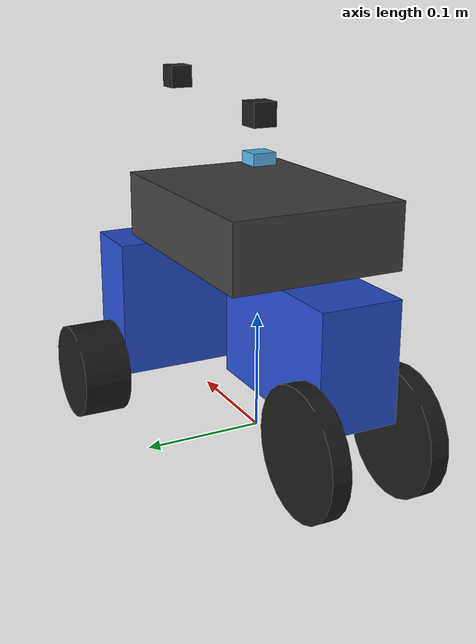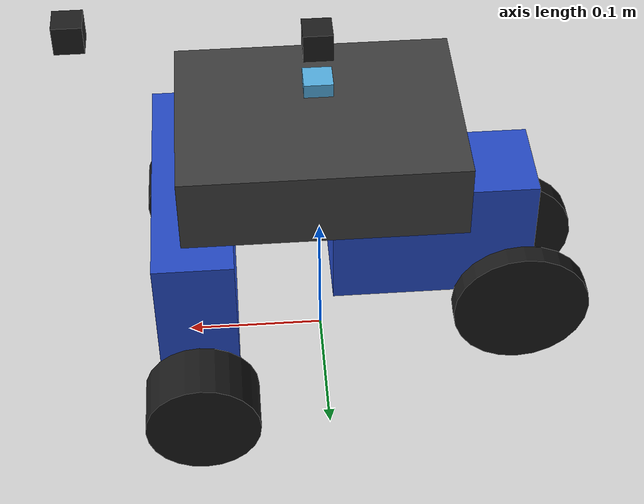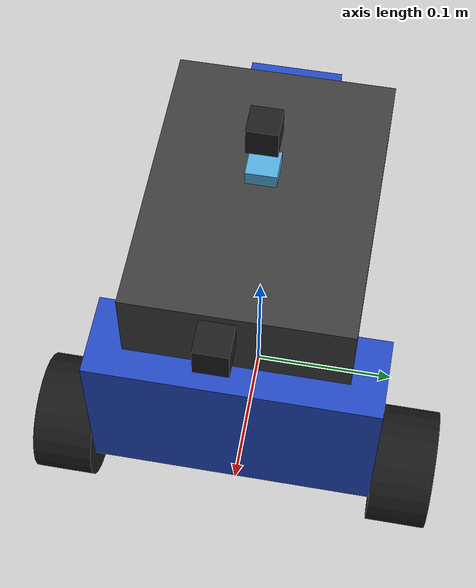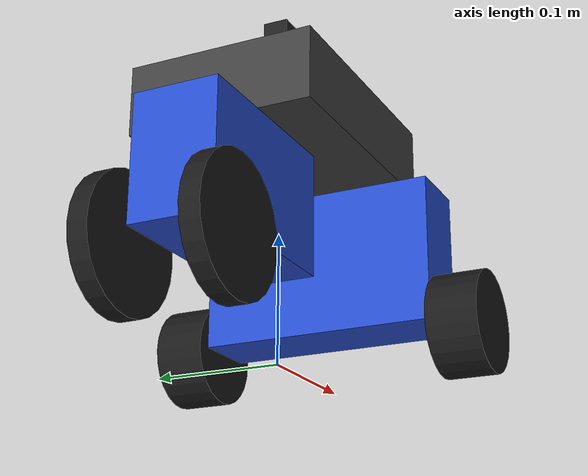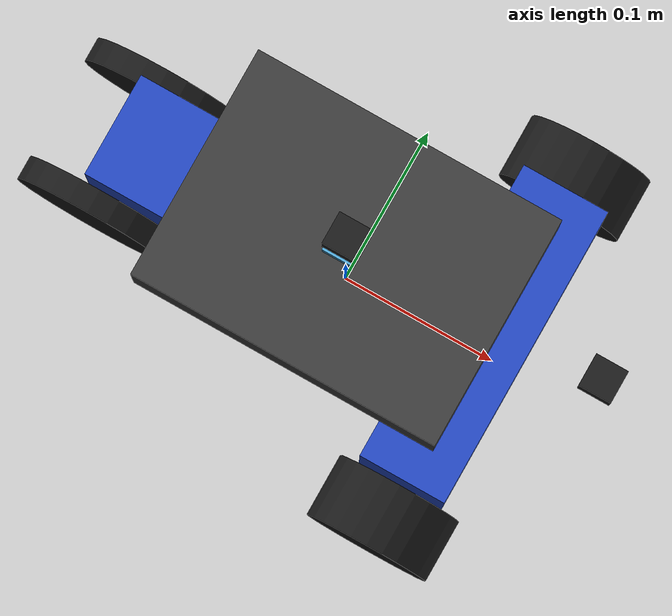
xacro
<?xml version="1.0"?>
<robot name="robot" xmlns:xacro="http://www.ros.org/wiki/xacro">
  <xacro:include filename="$(find robot_description)/world/robot/base.xacro"/>
  <xacro:include filename="$(find robot_description)/world/robot/wheels.xacro"/>
  <xacro:include filename="$(find robot_description)/world/robot/sensors.xacro"/>
  <xacro:include filename="$(find robot_description)/world/robot/ros2_control.xacro"/>
  <xacro:include filename="$(find robot_description)/world/robot/gazebo_references.xacro"/>
</robot>

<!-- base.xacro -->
<robot name="base" xmlns:xacro="http://www.ros.org/wiki/xacro">

    <xacro:property name="base_length" value="0.3"/>
    <xacro:property name="base_width" value="0.2"/>
    <xacro:property name="base_height" value="0.15"/>
    <xacro:property name="base_mass" value="4.0"/>
    <xacro:property name="base_color" value="0.25 0.25 0.25 1"/>

    <material name="base_material">
        <color rgba="${base_color}"/>
    </material>

    <link name="base_footprint"/>
    <link name="base_link">
        <visual>
            <origin xyz="0 0 0"/>
            <geometry>
                <box size="0.195 0.145 0.055"/>
            </geometry>
            <material name="base_material"/>
        </visual>
        <collision>
            <origin xyz="0 0 0"/>
            <geometry>
                <box size="0.19 0.145 0.055"/>
            </geometry>
        </collision>

        <inertial>
            <origin xyz="0 0 0"/>
            <mass value="${base_mass}"/>
            <inertia
                ixx="${(1/12) * base_mass * (base_width**2 + base_height**2)}"
                ixy="0" ixz="0"
                iyy="${(1/12) * base_mass * (base_length**2 + base_height**2)}"
                iyz="0"
                izz="${(1/12) * base_mass * (base_length**2 + base_width**2)}"/>
        </inertial>

        <visual>
            <origin xyz="-0.08 0 -0.075"/>
            <geometry>
                <box size="0.145 0.065 0.095"/>
            </geometry>
        </visual>
        <collision>
            <origin xyz="-0.08 0 -0.075"/>
            <geometry>
                <box size="0.145 0.065 0.095"/>
            </geometry>
        </collision>

        <visual>
            <origin xyz="0.09 0 -0.085"/>
            <geometry>
                <box size="0.055 0.19 0.115"/>
            </geometry>
        </visual>
        <collision>
            <origin xyz="0.09 0 -0.085"/>
            <geometry>
                <box size="0.055 0.19 0.115"/>
            </geometry>
        </collision>
    </link>

    <joint name="base_joint" type="fixed">
        <parent link="base_footprint"/>
        <child link="base_link"/>
        <origin xyz="0 0 0.1825"/>
    </joint>

</robot>

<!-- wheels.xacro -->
<robot name="wheels" xmlns:xacro="http://www.ros.org/wiki/xacro">

    <!-- ===== Properties ===== -->

    <xacro:property name="front_wheel_radius"   value="0.04"/>
    <xacro:property name="front_wheel_width"    value="0.04"/>
    <xacro:property name="front_wheel_mass"      value="0.3"/>

    <xacro:property name="rear_wheel_radius"    value="0.05"/>
    <xacro:property name="rear_wheel_width"    value="0.015"/>
    <xacro:property name="rear_wheel_mass"       value="0.1"/>

    <!-- Ackermann geometry (must match controllers.yaml) -->
    <xacro:property name="front_track_width"    value="0.23"/>   <!-- left-to-right wheel distance -->
    <xacro:property name="rear_track_width"     value="0.08"/>
    <xacro:property name="front_wheel_z"        value="-0.1425"/> <!-- wheel centre below base_link -->
    <xacro:property name="rear_wheel_z"         value="-0.1325"/>

    <!-- Cylinder inertia (wheel rolls on Y axis) -->
    <xacro:property name="front_wheel_ixy" value="${(1/12) * front_wheel_mass * (3 * front_wheel_radius**2 + front_wheel_width**2)}"/>
    <xacro:property name="front_wheel_izz" value="${(1/2)  * front_wheel_mass * front_wheel_radius**2}"/>

    <xacro:property name="rear_wheel_ixy" value="${(1/12) * rear_wheel_mass * (3 * rear_wheel_radius**2 + rear_wheel_width**2)}"/>
    <xacro:property name="rear_wheel_izz" value="${(1/2)  * rear_wheel_mass * rear_wheel_radius**2}"/>

    <!-- Steering knuckle inertia (tiny virtual link) -->
    <xacro:property name="steer_mass"    value="0.05"/>
    <xacro:property name="steer_inertia" value="0.0001"/>

    <material name="wheel_material">
        <color rgba="0.1 0.1 0.1 1"/>
    </material>

    <!-- ===== Macros ===== -->

    <!-- Virtual steering knuckle link (Ackermann pivot) -->
    <xacro:macro name="steering_link" params="name">
        <link name="${name}">
            <visual>
                <origin xyz="0 0 0"/>
                <geometry><cylinder radius="0.01" length="0.001"/></geometry>
            </visual>
            <inertial>
                <origin xyz="0 0 0"/>
                <mass value="${steer_mass}"/>
                <inertia ixx="${steer_inertia}" ixy="0" ixz="0"
                         iyy="${steer_inertia}" iyz="0"
                         izz="${steer_inertia}"/>
            </inertial>
        </link>
    </xacro:macro>

    <!-- Wheel link (cylinder rotated 90° so it rolls on Y axis) -->
    <xacro:macro name="front_wheel_link" params="name">
        <link name="${name}">
            <visual>
                <origin xyz="0 0 0" rpy="1.5707963 0 0"/>
                <geometry><cylinder radius="${front_wheel_radius}" length="${front_wheel_width}"/></geometry>
                <material name="wheel_material"/>
            </visual>
            <collision>
                <origin xyz="0 0 0" rpy="1.5707963 0 0"/>
                <geometry><cylinder radius="${front_wheel_radius}" length="${front_wheel_width}"/></geometry>
            </collision>
            <inertial>
                <origin xyz="0 0 0"/>
                <mass value="${front_wheel_mass}"/>
                <inertia ixx="${front_wheel_ixy}" ixy="0" ixz="0"
                         iyy="${front_wheel_ixy}" iyz="0"
                         izz="${front_wheel_izz}"/>
            </inertial>
        </link>
    </xacro:macro>

    <xacro:macro name="rear_wheel_link" params="name">
        <link name="${name}">
            <visual>
                <origin xyz="0 0 0" rpy="1.5707963 0 0"/>
                <geometry><cylinder radius="${rear_wheel_radius}" length="${rear_wheel_width}"/></geometry>
                <material name="wheel_material"/>
            </visual>
            <collision>
                <origin xyz="0 0 0" rpy="1.5707963 0 0"/>
                <geometry><cylinder radius="${rear_wheel_radius}" length="${rear_wheel_width}"/></geometry>
            </collision>
            <inertial>
                <origin xyz="0 0 0"/>
                <mass value="${rear_wheel_mass}"/>
                <inertia ixx="${rear_wheel_ixy}" ixy="0" ixz="0"
                         iyy="${rear_wheel_ixy}" iyz="0"
                         izz="${rear_wheel_izz}"/>
            </inertial>
        </link>
    </xacro:macro>

    <!-- ===== Links ===== -->

    <!-- Front steering knuckles (Ackermann: FRONT only) -->
    <xacro:steering_link name="front_left_steering_link"/>
    <xacro:steering_link name="front_right_steering_link"/>

    <!-- All four wheels via macro -->
    <xacro:front_wheel_link name="front_left_wheel_link"/>
    <xacro:front_wheel_link name="front_right_wheel_link"/>
    <xacro:rear_wheel_link name="rear_left_wheel_link"/>
    <xacro:rear_wheel_link name="rear_right_wheel_link"/>

    <!-- ===== Joints ===== -->

    <!-- Front steering joints (revolute: Ackermann, front-only) -->
    <joint name="front_left_steering_joint" type="revolute">
        <parent link="base_link"/>
        <child link="front_left_steering_link"/>
        <origin xyz="0.09 ${front_track_width/2} ${front_wheel_z}"/>
        <axis xyz="0 0 1"/>
        <limit lower="-0.819" upper="0.819" effort="30.0" velocity="30.0"/>
        <dynamics damping="0.2" friction="0.0"/>
    </joint>

    <joint name="front_right_steering_joint" type="revolute">
        <parent link="base_link"/>
        <child link="front_right_steering_link"/>
        <origin xyz="0.09 ${-front_track_width/2} ${front_wheel_z}"/>
        <axis xyz="0 0 1"/>
        <limit lower="-0.819" upper="0.819" effort="30.0" velocity="30.0"/>
        <dynamics damping="0.2" friction="0.0"/>
    </joint>

    <!-- Front wheel joints (continuous: driven, child of steering knuckle) -->
    <joint name="front_left_wheel_joint" type="continuous">
        <parent link="front_left_steering_link"/>
        <child link="front_left_wheel_link"/>
        <origin xyz="0 0 0"/>
        <axis xyz="0 1 0"/>
        <dynamics damping="0.01" friction="0.0"/>
    </joint>

    <joint name="front_right_wheel_joint" type="continuous">
        <parent link="front_right_steering_link"/>
        <child link="front_right_wheel_link"/>
        <origin xyz="0 0 0"/>
        <axis xyz="0 1 0"/>
        <dynamics damping="0.01" friction="0.0"/>
    </joint>

    <!-- Rear wheel joints (continuous: connect directly to base_link, no steering) -->
    <joint name="rear_left_wheel_joint" type="continuous">
        <parent link="base_link"/>
        <child link="rear_left_wheel_link"/>
        <origin xyz="-0.145 ${rear_track_width/2} ${rear_wheel_z}"/>
        <axis xyz="0 1 0"/>
        <dynamics damping="0.01" friction="0.0"/>
    </joint>

    <joint name="rear_right_wheel_joint" type="continuous">
        <parent link="base_link"/>
        <child link="rear_right_wheel_link"/>
        <origin xyz="-0.145 ${-rear_track_width/2} ${rear_wheel_z}"/>
        <axis xyz="0 1 0"/>
        <dynamics damping="0.01" friction="0.0"/>
    </joint>

</robot>

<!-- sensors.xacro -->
<robot name="sensors" xmlns:xacro="http://www.ros.org/wiki/xacro">

  <link name ="lidar_link">
    <visual>
      <origin xyz="0 0 0"/><geometry><box size="0.02 0.02 0.02"/></geometry>
    </visual>
    <collision>
      <origin xyz="0 0 0"/><geometry><box size="0.02 0.02 0.02"/></geometry>
    </collision>
    <inertial><origin xyz="0 0 0"/><mass value="0.1"/><inertia ixx="0.0001" ixy="0" ixz="0" iyy="0.0001" iyz="0" izz="0.0001"/></inertial>
  </link>

  <link name="imu_link">
    <inertial>
      <origin xyz="0 0 0" rpy="0 0 0"/>
      <mass value="0.01"/>
      <inertia ixx="1e-6" ixy="0" ixz="0" iyy="1e-6" iyz="0" izz="1e-6"/>
    </inertial>
    <visual>
      <origin xyz="0 0 0" rpy="0 0 0"/>
      <geometry><box size="0.02 0.02 0.01"/></geometry>
    </visual>
    <collision>
      <origin xyz="0 0 0" rpy="0 0 0"/>
      <geometry>
        <box size="0.02 0.02 0.01"/>
      </geometry>
    </collision>
  </link>

  <link name="camera_link">
    <visual>
      <origin xyz="0 0 0" rpy="0 0 0"/>
      <geometry><box size="0.02 0.02 0.02"/></geometry>
    </visual>
    <collision>
      <origin xyz="0 0 0" rpy="0 0 0"/>
      <geometry><box size="0.02 0.02 0.02"/></geometry>
    </collision>
      <inertial><origin xyz="0 0 0"/><mass value="0.1"/><inertia ixx="0.0001" ixy="0" ixz="0" iyy="0.0001" iyz="0" izz="0.0001"/></inertial>
  </link>

  <joint name="lidar_joint" type="fixed">
    <parent link ="base_link"/>
    <child link="lidar_link"/>
    <origin xyz = "0.0 0 0.085" rpy="0 0 0"/>
  </joint>

  <joint name="imu_joint" type="fixed">
    <parent link="base_link"/>
    <child link="imu_link"/>
    <origin xyz="0.0 0.0 0.05" rpy="0 0 0"/>
  </joint>

  <joint name="camera_joint" type="fixed">
    <parent link="base_link"/>
    <child link="camera_link"/>
    <origin xyz="0.16 0 0.1" rpy="0 0 0"/>
  </joint>
<gazebo reference="lidar_link">
    <sensor name="tg15" type="ray">
      <update_rate>26</update_rate>
      <always_on>true</always_on>
      <visualize>false</visualize>

      <ray>
        <scan>
          <horizontal>
            <samples>1440</samples>
            <resolution>1</resolution>
            <min_angle>-3.1415</min_angle>
            <max_angle>3.1415</max_angle>
          </horizontal>
          <vertical>
            <samples>1</samples>
            <min_angle>0.0</min_angle>
            <max_angle>0.0</max_angle>
          </vertical>
        </scan>

        <range>
          <min>0.15</min>
          <max>15.0</max>
          <resolution>0.01</resolution>
        </range>

        <noise>
          <type>gaussian</type>
          <mean>0.0</mean>
          <stddev>0.01</stddev>
        </noise>
      </ray>

      <plugin name="gazebo_ros_ray_sensor" filename="libgazebo_ros_ray_sensor.so">
        <ros>
          <namespace>/lidar/tg15</namespace>
          <remapping>~/out:=/scan</remapping>
          <qos>
            <topic name="/scan">
              <publisher>
                <reliability>reliable</reliability>
              </publisher>
            </topic>
          </qos>
        </ros>
        <frame_name>lidar_link</frame_name>
        <output_type>sensor_msgs/LaserScan</output_type>
      </plugin>
    </sensor>
  </gazebo>

  <gazebo reference="imu_link">
    <sensor name="imu_sensor" type="imu">
      <plugin filename="libgazebo_ros_imu_sensor.so" name="imu_plugin">
        <ros>
          <namespace>/</namespace>
          <remapping>~/out:=imu</remapping>
        </ros>
        <initial_orientation_as_reference>false</initial_orientation_as_reference>
      </plugin>

      <always_on>true</always_on>
      <update_rate>100</update_rate>
      <visualize>false</visualize>
    </sensor>
  </gazebo>

   <gazebo reference="camera_link">
    <sensor name="camera" type="camera">
      <update_rate>30</update_rate>
      <visualize>false</visualize>

      <camera>
        <horizontal_fov>2.46</horizontal_fov>
        <image>
          <width>1280</width>
          <height>720</height>
          <format>R8G8B8</format>
        </image>
        <clip>
          <near>0.05</near>
          <far>20.0</far>
        </clip>
        <!-- noise can stay here -->
      </camera>

      <plugin name="gazebo_ros_camera" filename="libgazebo_ros_camera.so">
        <frame_name>camera_link</frame_name>
      </plugin>
    </sensor>
  </gazebo>

</robot>
